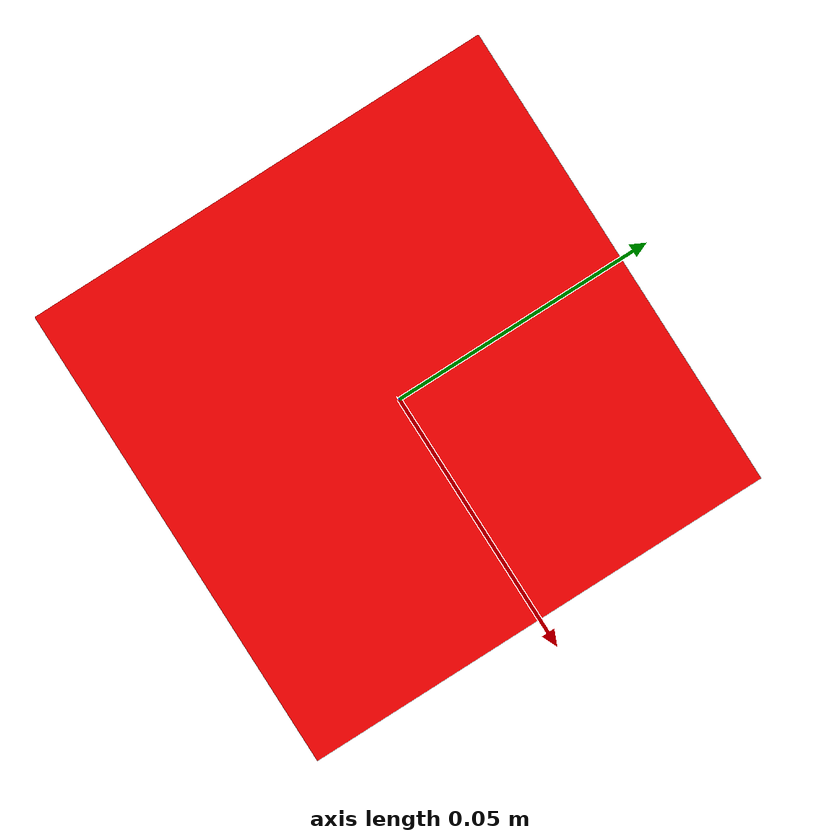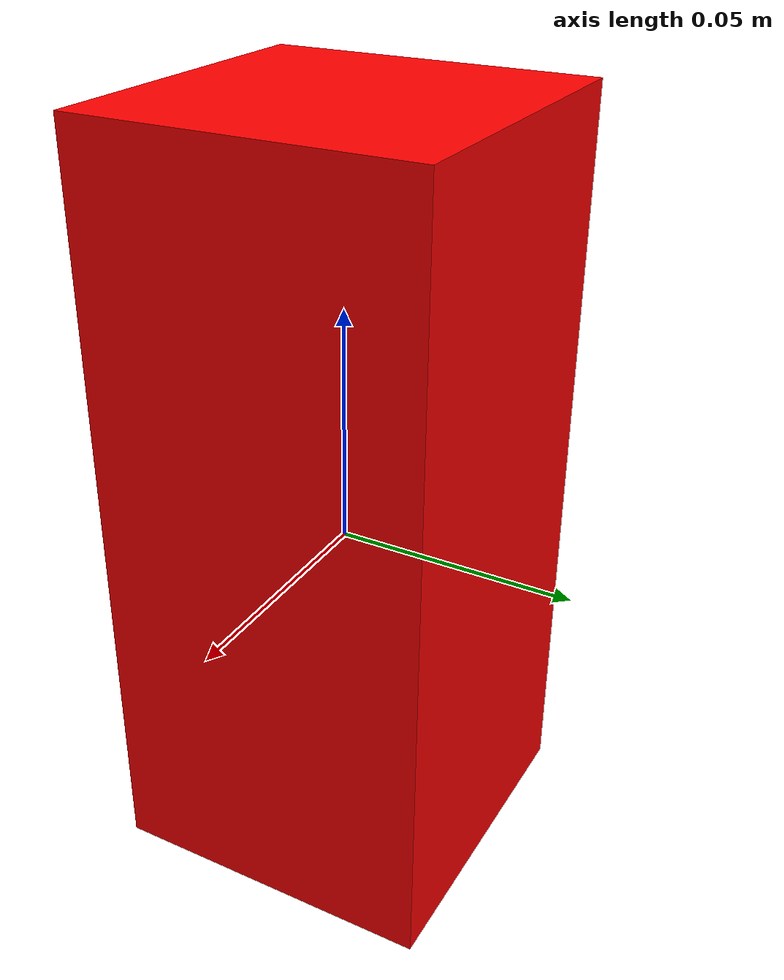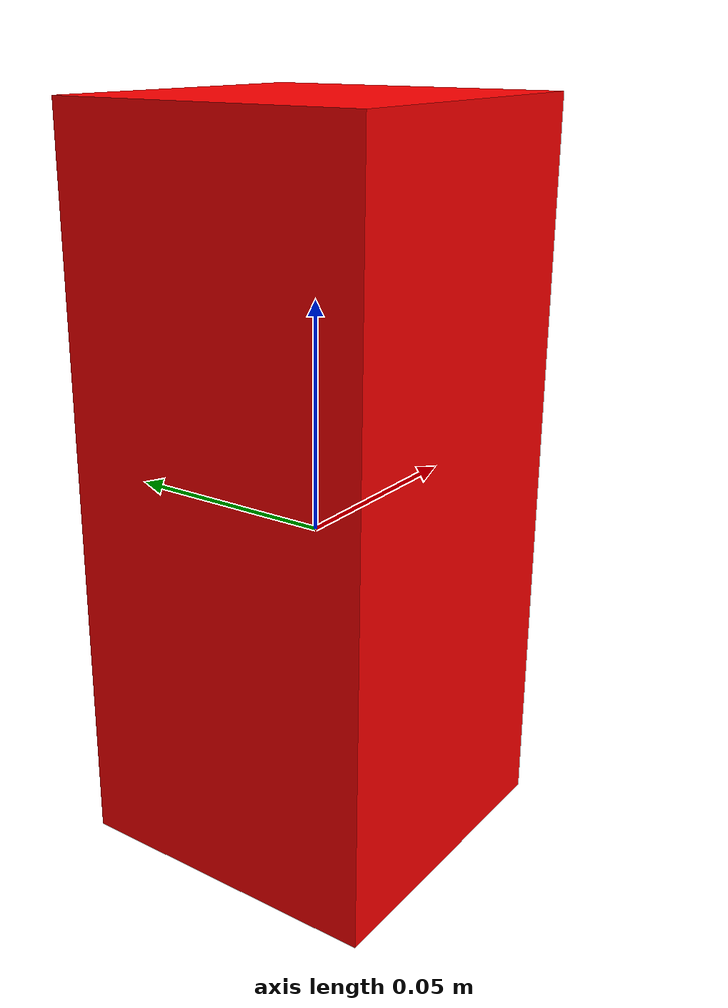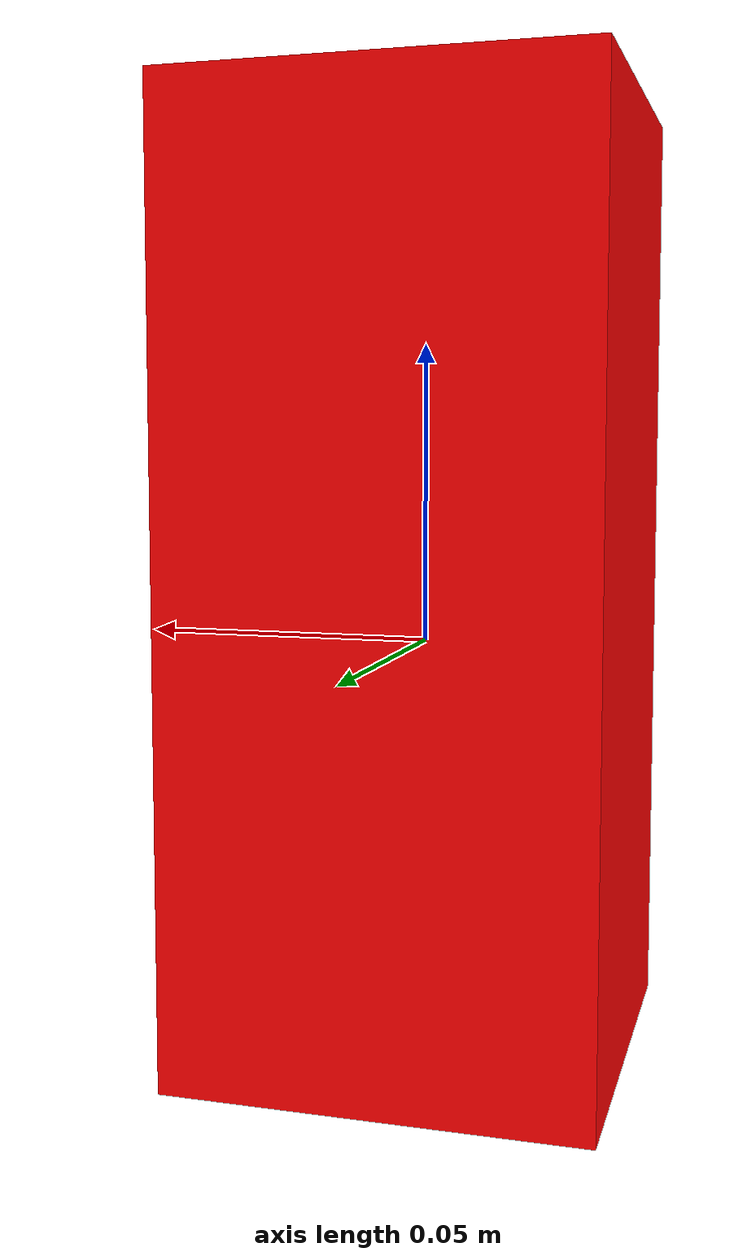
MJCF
<mujoco model="picked_box">
    <worldbody>
        <body name="picked_box" pos="0.0 0.0 0.0" quat="1 0 0 0">
            <geom name="picked_box" pos="0 0 0.01" size="0.035 0.035 0.08" rgba="1 0 0 1.0" type="box" mass="0.05" friction="3 0.3 0.3" priority="1"/>
            <joint name="picked_box_joint" type="free"/>
        </body>
    </worldbody>
</mujoco>
